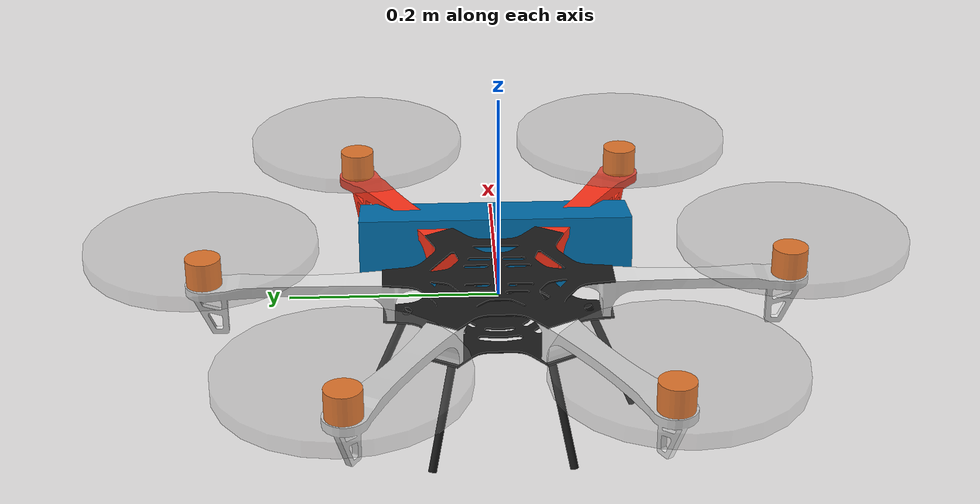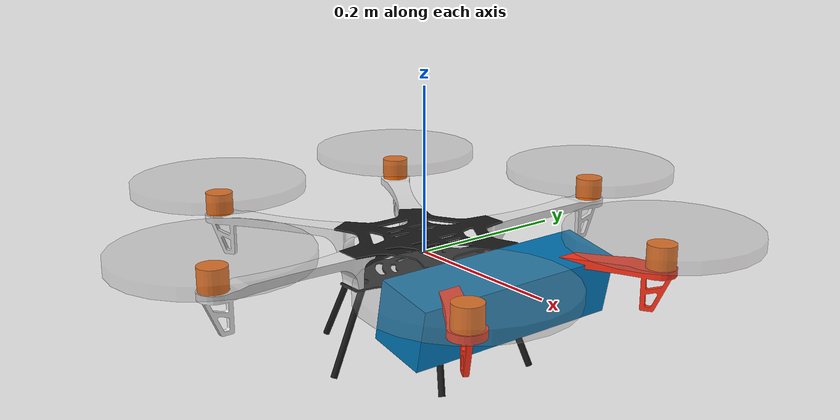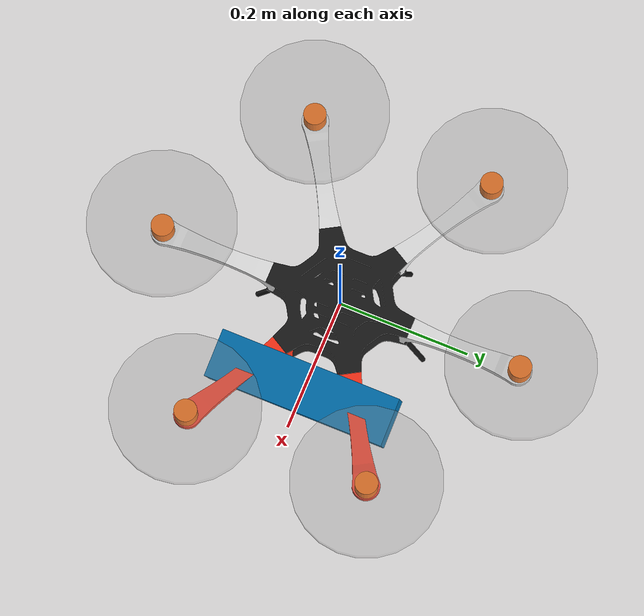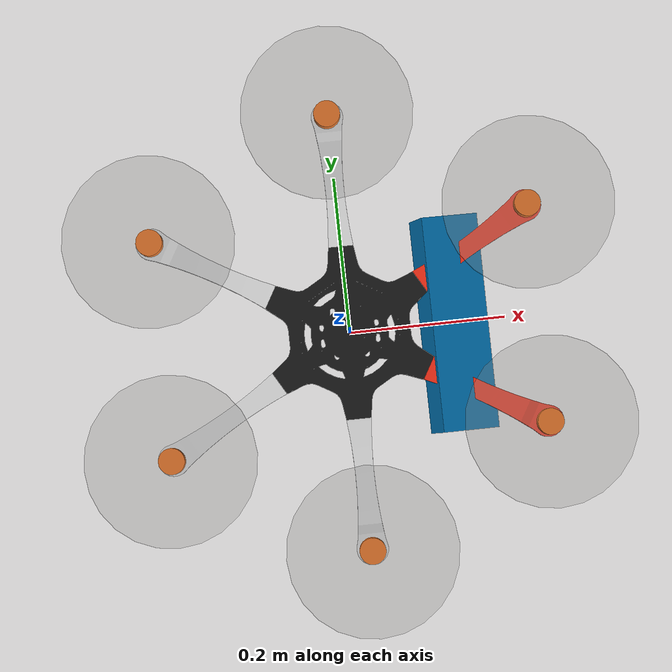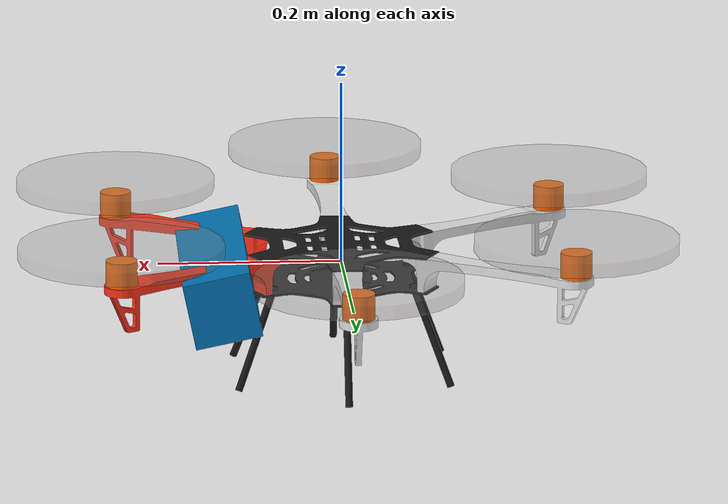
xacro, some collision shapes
<?xml version="1.0"?>
<!--
    - Base      : dji f550
    - 3d Sensor : asus_xtion_pro
-->
<robot name="dji_f550" xmlns:xacro="http://ros.org/wiki/xacro">
  <xacro:include filename="$(find copter_description)/urdf/common_properties.xacro"/>
  <xacro:include filename="$(find copter_description)/urdf/dji_f550_model.xacro" />
  <xacro:include filename="$(find copter_description)/urdf/sensors/asus_xtion_pro.xacro"/>
</robot>

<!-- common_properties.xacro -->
<!--
  Various useful properties such as constants and materials
 -->
<robot name="xacro_properties" xmlns:xacro="http://ros.org/wiki/xacro">
  <xacro:property name="M_PI" value="3.1415926535897931" />

    <material name="White">
      <color rgba="0.9 0.9 0.9 1"/>
    </material>

    <material name="Grey">
      <color rgba="0.6 0.6 0.6 0.3"/>
    </material>

  <xacro:property name="material_light_grey">
    <material name="light_grey">
      <color rgba="0.6 0.6 0.6 1"/>
    </material>
  </xacro:property>
  <xacro:property name="material_dark_grey">
    <material name="dark_grey">
      <color rgba="0.3 0.3 0.3 1"/>
    </material>
  </xacro:property>

    <material name="Black">
      <color rgba="0.1 0.1 0.1 1"/>
    </material>

    <material name="Red">
      <color rgba="1 0.2 0.1 1"/>
    </material>

  <xacro:property name="material_green">
    <material name="green">
      <color rgba="0.0 0.8 0.0 1"/>
    </material>
  </xacro:property>
  <xacro:property name="material_blue">
    <material name="blue">
      <color rgba="0.0 0.0 1.0 1"/>
    </material>
  </xacro:property>

    <material name="Grey_blue">
      <color rgba="0.1 0.1 0.3 0.3" />
    </material>

    <material name="Orange">
      <color rgba="1.0 0.4 0.0 1"/>
    </material>

</robot>

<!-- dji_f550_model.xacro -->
<robot xmlns:xacro="http://ros.org/wiki/xacro" name="copter">

<!-- General -->
	<xacro:include filename="$(find copter_description)/urdf/dji_f550_gazebo.xacro"/>
	<xacro:include filename="$(find copter_description)/urdf/sensors/asus_xtion_pro.xacro"/>
<!-- Ray macros -->
	<xacro:include filename="$(find copter_description)/urdf/dji_f550_ray.xacro"/>

<!-- Build the body frame -->

	<link name="frame">
		<collision>
			<origin	xyz="0 0 0" rpy="0 0 0" />
			<geometry>
				<cylinder radius="0.115" length="0.045"/>
			</geometry>
		</collision>
    		<visual>
      			<origin	xyz="0 0 0" rpy="0 0 0" />
      			<geometry>
				<mesh filename="package://copter_description/meshes/stl/frame.STL" />
      			</geometry>
     			<material name="Black" />
    		</visual>
		<inertial>
			<mass value="1.9"/>
			<inertia 	ixx="0" ixy="0" ixz="0"
					iyy="0" iyz="0"
					izz="0"/>
		</inertial>
	</link>
	<xacro:dji_f550_gazebo_properties link="frame" color="Black" transparency="0"/>

<!-- Build copter rays -->
	<ray_stick side="r" num="1" 	angle="-${M_PI/6}"	color="Red" />
	<ray_stick side="r" num="2"	angle="-${M_PI/2}"	color="White" />
	<ray_stick side="r" num="3" 	angle="-${M_PI*5/6}"	color="White" />
	<ray_stick side="l" num="1"	angle="${M_PI/6}"	color="Red" />
	<ray_stick side="l" num="2"	angle="${M_PI/2}"	color="White" />
	<ray_stick side="l" num="3" 	angle="${M_PI*5/6}"	color="White" />

<!-- Build copter foots -->
	<ray_foot side="r" num="1" 	angle="-${M_PI/6}"	/>
	<ray_foot side="r" num="2"	angle="-${M_PI/2}"	/>
	<ray_foot side="r" num="3" 	angle="-${M_PI*5/6}"	/>
	<ray_foot side="l" num="1"	angle="${M_PI/6}"	/>
	<ray_foot side="l" num="2"	angle="${M_PI/2}"	/>
	<ray_foot side="l" num="3" 	angle="${M_PI*5/6}"	/>

<!-- Build copter fake rays for gazebo -->
	<fake_ray name="front" 	angle="0"/>
	<fake_ray name="back" 	angle="${M_PI}"/>
	<fake_ray name="left" 	angle="${M_PI/2}"/>
	<fake_ray name="right" 	angle="-${M_PI/2}"/>

<!-- Build 3d sensor for gazebo -->
	<sensor_base/>
	<sensor_asus_xtion_pro  parent="3dsensor_link"/>
<!-- 3d sensor for simulation -->
	<copter_sim_3dsensor/>

</robot>

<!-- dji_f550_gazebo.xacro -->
<robot name="copter_gazebo" xmlns:xacro="http://ros.org/wiki/xacro">

	<xacro:macro name="dji_f550_gazebo_properties" params="link color transparency" >
		<gazebo reference="${link}">
			<material>Gazebo/${color}</material>
			<visual>
			<transparency>${transparency}</transparency>
			</visual>
		</gazebo>
	</xacro:macro>

	<xacro:macro name="fake_ray" params="name angle">

  	<joint name="fake_ray_joint_${name}" type="revolute">
    		<origin xyz="0 0 0" rpy="0 0 ${angle}" />
    		<parent link="frame" />
    		<child link="fake_arm_${name}" />
		<limit lower="0" upper="0" effort="0" velocity="0" />
  	</joint>

    	<link name="fake_arm_${name}">
		<inertial>
			<mass value="0.0001"/>
			<inertia 	ixx="0" ixy="0" ixz="0"
					iyy="0" iyz="0"
					izz="0"/>
		</inertial>
	</link>

  	<joint name="fake_motor_joint_${name}" type="revolute">
    		<origin xyz="0.28 0 0" rpy="0 0 0" />
    		<parent link="fake_arm_${name}" />
    		<child link="fake_motor_${name}" />
		<limit lower="0" upper="0" effort="0" velocity="0" />
  	</joint>

    	<link name="fake_motor_${name}">
		<inertial>
			<mass value="0.0001"/>
			<inertia 	ixx="0" ixy="0" ixz="0"
					iyy="0" iyz="0"
					izz="0"/>
		</inertial>
	</link>

  	</xacro:macro>

	<xacro:macro name="sensor_base">
	<link name="3dsensor_link" >
		<origin	xyz="0 0 0" rpy="0 0 0" />
		<inertial>
			<mass value="0.0001"/>
			<inertia 	ixx="0" ixy="0" ixz="0"
					iyy="0" iyz="0"
					izz="0"/>
		</inertial>
	</link>

	<joint name="3dsensor_joint" type="revolute">
		<parent link="frame" />
		<child link="3dsensor_link" />
		<origin xyz="0 0 0" rpy="0 0 0" />
		<limit lower="0" upper="0" effort="0" velocity="0" />
	</joint>
	</xacro:macro>

	<gazebo>
		<plugin name="flyer_plugin" filename="libflyer_plugin.so"/>
		<plugin name="sonar_plugin" filename="libcopter_gazebo_ros_sonar.so"/>
	</gazebo>

	<gazebo>
    		<plugin name="imu_plugin" filename="libcopter_gazebo_ros_imu.so">
        		<alwaysOn>true</alwaysOn>
        		<bodyName>frame</bodyName>
        		<topicName>imu_data</topicName>
        		<updateRate>40.0</updateRate>
    		</plugin>
	</gazebo>

 <!-- Microsoft Kinect / ASUS Xtion PRO Live for simulation -->
  <xacro:macro name="copter_sim_3dsensor">
    <gazebo reference="camera_link">
      <sensor type="depth" name="camera">
        <always_on>true</always_on>
        <update_rate>25.0</update_rate>
        <camera>
          <horizontal_fov>${60.0*M_PI/180.0}</horizontal_fov>
          <image>
            <format>R8G8B8</format>
            <width>320</width>
            <height>240</height>
          </image>
          <clip>
            <near>0.5</near>
            <far>5.0</far>
          </clip>
        </camera>
        <plugin name="kinect_camera_controller" filename="libgazebo_ros_openni_kinect.so">
          <cameraName>camera</cameraName>
          <alwaysOn>false</alwaysOn>
          <updateRate>40.0</updateRate>
          <imageTopicName>rgb_image_raw</imageTopicName>
          <depthImageTopicName>depth/image_raw</depthImageTopicName>
          <pointCloudTopicName>depth/points</pointCloudTopicName>
          <cameraInfoTopicName>rgb_camera_info</cameraInfoTopicName>
          <depthImageCameraInfoTopicName>depth/camera_info</depthImageCameraInfoTopicName>
          <frameName>camera_depth_optical_frame</frameName>
          <baseline>0.1</baseline>
          <distortion_k1>0.00001</distortion_k1>
          <distortion_k2>0.00001</distortion_k2>
          <distortion_k3>0.00001</distortion_k3>
          <distortion_t1>0.00001</distortion_t1>
          <distortion_t2>0.00001</distortion_t2>
          <pointCloudCutoff>0.4</pointCloudCutoff>
        </plugin>
      </sensor>
    </gazebo>
  <gazebo reference="camera_rgb_frame">
    <sensor type="camera" name="camera_rgb">
      <update_rate>25.0</update_rate>
      <camera name="head">
        <horizontal_fov>${60.0*M_PI/180.0}</horizontal_fov>
        <image>
          <width>320</width>
          <height>240</height>
          <format>R8G8B8</format>
        </image>
        <clip>
          <near>0.02</near>
          <far>50</far>
        </clip>
        <noise>
          <type>gaussian</type>
           Noise is sampled independently per pixel on each frame.
               That pixel's noise value is added to each of its color
               channels, which at that point lie in the range [0,1].
          <mean>0.08</mean>
          <stddev>0.01</stddev>
        </noise>
      </camera>
      <plugin name="camera_controller" filename="libgazebo_ros_camera.so">
        <alwaysOn>true</alwaysOn>
        <updateRate>40.0</updateRate>
        <cameraName>camera/rgb</cameraName>
        <imageTopicName>image_raw</imageTopicName>
        <cameraInfoTopicName>camera_info</cameraInfoTopicName>
        <frameName>camera_rgb_optical_frame</frameName>
        <hackBaseline>0.07</hackBaseline>
        <distortionK1>0.00001</distortionK1>
        <distortionK2>0.00001</distortionK2>
        <distortionK3>0.00001</distortionK3>
        <distortionT1>0.00001</distortionT1>
        <distortionT2>0.00001</distortionT2>
      </plugin>
    </sensor>
  </gazebo>
  </xacro:macro>

</robot>

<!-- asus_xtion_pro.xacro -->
<robot name="sensor_asus_xtion_pro" xmlns:xacro="http://ros.org/wiki/xacro">
  <xacro:include filename="$(find copter_description)/urdf/sensors/3d_sensor_properties.xacro"/>

  <!-- Xacro properties -->
  <xacro:property name="M_SCALE" value="0.001"/>
  <xacro:property name="asus_xtion_pro_depth_rel_rgb_py" value="0.0270" />
  <xacro:property name="asus_xtion_pro_cam_rel_rgb_py"   value="-0.0220" />

  <!-- Parameterised in part by the values in turtlebot_properties.urdf.xacro -->
  <xacro:macro name="sensor_asus_xtion_pro" params="parent">
    <joint name="camera_rgb_joint" type="revolute">
      <origin xyz="${cam_px} ${cam_py} ${cam_pz}"
              rpy="${cam_or} ${cam_op} ${cam_oy}"/>
      <parent link="${parent}"/>
      <child link="camera_rgb_frame" />
      <limit lower="0" upper="0" effort="0" velocity="0" />
    </joint>

    <link name="camera_rgb_frame">
		<inertial>
			<mass value="0.0001"/>
			<inertia 	ixx="0" ixy="0" ixz="0"
					iyy="0" iyz="0"
					izz="0"/>
		</inertial>
    </link>

    <joint name="camera_rgb_optical_joint" type="revolute">
      <origin xyz="0 0 0" rpy="${-M_PI/2} 0 ${-M_PI/2}" />
      <parent link="camera_rgb_frame" />
      <child link="camera_rgb_optical_frame" />
      <limit lower="0" upper="0" effort="0" velocity="0" />
    </joint>

    <link name="camera_rgb_optical_frame">
		<inertial>
			<mass value="0.0001"/>
			<inertia 	ixx="0" ixy="0" ixz="0"
					iyy="0" iyz="0"
					izz="0"/>
		</inertial>
    </link>

    <joint name="camera_joint" type="revolute">
      <origin xyz="0 ${asus_xtion_pro_cam_rel_rgb_py} 0"
              rpy="0 0 0"/>
      <parent link="camera_rgb_frame"/>
      <child link="camera_link"/>
      <limit lower="0" upper="0" effort="0" velocity="0" />
    </joint>

    <link name="camera_link">
      <visual>
        <origin xyz="-0.01 0 0" rpy="${-M_PI/2} -${M_PI} ${-M_PI/2}"/>
        <geometry>
          <mesh filename="package://copter_description/meshes/sensors/asus_xtion_pro_live.dae" scale="${M_SCALE} ${M_SCALE} ${M_SCALE}"/>
        </geometry>
      </visual>
      <collision>
        <origin xyz="0.0 0.0 0.0" rpy="0 0 0" />
        <geometry>
        <box size="0.0730 .2760 0.0720"/>
      </geometry>
      </collision>
		<inertial>
			<mass value="0.0001"/>
			<inertia 	ixx="0" ixy="0" ixz="0"
					iyy="0" iyz="0"
					izz="0"/>
		</inertial>
    </link>

    <joint name="camera_depth_joint" type="revolute">
      <origin xyz="0 ${asus_xtion_pro_depth_rel_rgb_py} 0" rpy="0 0 0" />
      <parent link="camera_rgb_frame" />
      <child link="camera_depth_frame" />
      <limit lower="0" upper="0" effort="0" velocity="0" />
    </joint>

    <link name="camera_depth_frame">
		<inertial>
			<mass value="0.0001"/>
			<inertia 	ixx="0" ixy="0" ixz="0"
					iyy="0" iyz="0"
					izz="0"/>
		</inertial>
    </link>

    <joint name="camera_depth_optical_joint" type="revolute">
      <origin xyz="0 0 0" rpy="${-M_PI/2} 0 ${-M_PI/2}" />
      <parent link="camera_depth_frame" />
      <child link="camera_depth_optical_frame" />
      <limit lower="0" upper="0" effort="0" velocity="0" />
    </joint>

    <link name="camera_depth_optical_frame">
		<inertial>
			<mass value="0.0001"/>
			<inertia 	ixx="0" ixy="0" ixz="0"
					iyy="0" iyz="0"
					izz="0"/>
		</inertial>
    </link>
  </xacro:macro>
</robot>

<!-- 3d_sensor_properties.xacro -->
<robot>
  <!--
    These properties must be observed by any machine
    that wants to be defined as a turtlebot. Refer
    to the REP for more details.

    http://www.ros.org/reps/rep-0119.html
   -->

	<property name="cam_px" value="0.135" />
	<property name="cam_py" value="0.02" />
	<property name="cam_pz" value="-0.015" />
	<property name="cam_or" value="0" />
	<property name="cam_op" value="0.2" />
	<property name="cam_oy" value="0" />
</robot>

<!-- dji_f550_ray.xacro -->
<robot xmlns:xacro="http://ros.org/wiki/xacro" name="copter_ray">

<!-- Build ray -->
	<xacro:macro name="ray_stick" params="side num angle color">

  	<joint name="ray_joint_${side}${num}" type="revolute">
    		<origin xyz="0 0 0" rpy="0 0 ${angle}" />
    		<parent link="frame" />
    		<child link="arm_${side}${num}" />
		<limit lower="0" upper="0" effort="0" velocity="0" />
  	</joint>

    	<link name="arm_${side}${num}">
		<collision>
			<origin	xyz="${0.11+0.095} 0 -0.008" rpy="0 0 0" />
			<geometry>
				<box size="0.19 0.035 0.055"/>
			</geometry>
		</collision>
    		<visual>
      			<origin	xyz="0.11 0 0" rpy="0 0 0" />
      			<geometry>
				<mesh filename="package://copter_description/meshes/stl/arm.STL" />
      			</geometry>
     			<material name="${color}" />
    		</visual>
		<inertial>
			<mass value="0.08"/>
			<inertia 	ixx="0" ixy="0" ixz="0"
					iyy="0" iyz="0"
					izz="0"/>
		</inertial>
	</link>

  	<joint name="motor_joint_${side}${num}" type="revolute">
    		<origin xyz="0.28 0 0" rpy="0 0 0" />
    		<parent link="arm_${side}${num}" />
    		<child link="motor_${side}${num}" />
		<limit lower="0" upper="0" effort="0" velocity="0" />
  	</joint>

    	<link name="motor_${side}${num}">
		<collision>
			<origin	xyz="0 0 0.03" rpy="0 0 0" />
			<geometry>
				<cylinder radius="0.017" length="0.03"/>
			</geometry>
		</collision>
    		<visual>
      			<origin	xyz="0 0 0.03" rpy="0 0 0" />
      			<geometry>
				<cylinder radius="0.017" length="0.03"/>
      			</geometry>
     			<material name="Orange" />
    		</visual>
		<inertial>
			<mass value="0.055"/>
			<inertia 	ixx="0" ixy="0" ixz="0"
					iyy="0" iyz="0"
					izz="0"/>
		</inertial>
	</link>

  	<joint name="propeller_joint_${side}${num}" type="revolute">
    		<origin xyz="0 0 0.055" rpy="0 0 0" />
    		<parent link="motor_${side}${num}" />
    		<child link="propeller_${side}${num}" />
    		<limit lower="0" upper="0" effort="0" velocity="0" />
  	</joint>

    	<link name="propeller_${side}${num}">
		<collision>
			<origin	xyz="0 0 0" rpy="0 0 0" />
			<geometry>
				<cylinder radius="0.11" length="0.015"/>
			</geometry>
		</collision>
    		<visual>
      			<origin	xyz="0 0 0" rpy="0 0 0" />
      			<geometry>
				<cylinder radius="0.11" length="0.015"/>
      			</geometry>
     			<material name="Grey" />
    		</visual>
		<inertial>
			<mass value="0.015"/>
			<inertia 	ixx="0" ixy="0" ixz="0"
					iyy="0" iyz="0"
					izz="0"/>
		</inertial>
	</link>

	<xacro:dji_f550_gazebo_properties link="propeller_${side}${num}" color="Grey" transparency="0.5"/>
	<xacro:dji_f550_gazebo_properties link="motor_${side}${num}" color="Orange" transparency="0"/>
	<xacro:dji_f550_gazebo_properties link="arm_${side}${num}" color="${color}" transparency="0"/>

	</xacro:macro>

<!-- Build foots -->
	<xacro:macro name="ray_foot" params="side num angle">

  	<joint name="ray_foot_joint_${side}${num}" type="revolute">
    		<origin xyz="0 0 0" rpy="0 0 ${angle}" />
    		<parent link="frame" />
    		<child link="foot_${side}${num}" />
		<limit lower="0" upper="0" effort="0" velocity="0" />
  	</joint>

    	<link name="foot_${side}${num}">
		<collision>
      			<origin	xyz="0.11 0 -0.07" rpy="0 -0.4 0" />
			<geometry>
				<cylinder radius="0.004" length="0.12"/>
			</geometry>
		</collision>
    		<visual>
      			<origin	xyz="0.11 0 -0.07" rpy="0 -0.4 0" />
			<geometry>
				<cylinder radius="0.004" length="0.12"/>
			</geometry>
     			<material name="Black" />
    		</visual>
		<inertial>
			<mass value="0.0001"/>
			<inertia 	ixx="0" ixy="0" ixz="0"
					iyy="0" iyz="0"
					izz="0"/>
		</inertial>
	</link>

	<xacro:dji_f550_gazebo_properties link="foot_${side}${num}" color="Black" transparency="0"/>

	</xacro:macro>
</robot>
